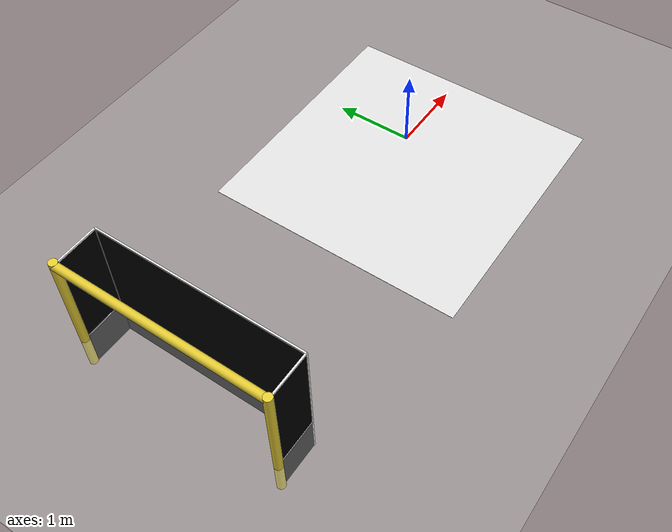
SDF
<sdf version="1.6">
 <world name="default">
  <model name="ground_plane">
   <static>1</static>
   <link name="link">
    <collision name="collision">
     <geometry><plane><normal>0 0 1</normal><size>100 100</size></plane></geometry>
     <surface><friction><ode><mu>100</mu><mu2>50</mu2></ode></friction></surface>
    </collision>
    <visual name="visual">
     <cast_shadows>0</cast_shadows>
     <geometry><plane><normal>0 0 1</normal><size>100 100</size></plane></geometry>
     <material>
      <script><uri>file://media/materials/scripts/gazebo.material</uri><name>Gazebo/Grey</name></script>
     </material>
    </visual>
   </link>
  </model>
  <model name="floor">
   <link name="link_0">
    <inertial>
     <mass>1</mass>
     <inertia><ixx>1</ixx><ixy>0</ixy><ixz>0</ixz><iyy>1</iyy><iyz>0</iyz><izz>1</izz></inertia>
    </inertial>
    <gravity>0</gravity>
    <visual name="visual">
     <pose>0 0 -0.49 0 -0 0</pose>
     <geometry><plane><normal>0 0 1</normal><size>3.5 3.5</size></plane></geometry>
     <material>
      <lighting>1</lighting>
      <script><uri>file://media/materials/scripts/gazebo.material</uri><name>Gazebo/White</name></script>
      <ambient>1 1 1 1</ambient>
      <diffuse>1 1 1 1</diffuse>
      <specular>1 1 1 1</specular>
      <emissive>0 0 0 1</emissive>
      <shader type="vertex"><normal_map>__default__</normal_map></shader>
     </material>
    </visual>
    <collision name="collision">
     <pose>0 0 -0.49 0 -0 0</pose>
     <geometry><plane><normal>0 0 1</normal><size>100 100</size></plane></geometry>
     <surface>
      <friction>
       <ode><mu>100</mu><mu2>50</mu2><fdir1>0 0 0</fdir1><slip1>0</slip1><slip2>0</slip2></ode>
       <torsional>
        <coefficient>1</coefficient>
        <patch_radius>0</patch_radius>
        <surface_radius>0</surface_radius>
        <use_patch_radius>1</use_patch_radius>
        <ode><slip>0</slip></ode>
       </torsional>
      </friction>
      <bounce><restitution_coefficient>0</restitution_coefficient><threshold>100000</threshold></bounce>
      <contact>
       <collide_without_contact>0</collide_without_contact>
       <collide_without_contact_bitmask>1</collide_without_contact_bitmask>
       <collide_bitmask>1</collide_bitmask>
       <ode>
        <soft_cfm>0</soft_cfm>
        <soft_erp>0.2</soft_erp>
        <kp>1e+13</kp>
        <kd>1</kd>
        <max_vel>0.01</max_vel>
        <min_depth>0</min_depth>
       </ode>
       <bullet>
        <split_impulse>1</split_impulse>
        <split_impulse_penetration_threshold>-0.01</split_impulse_penetration_threshold>
        <soft_cfm>0</soft_cfm>
        <soft_erp>0.2</soft_erp>
        <kp>1e+13</kp>
        <kd>1</kd>
       </bullet>
      </contact>
     </surface>
    </collision>
   </link>
   <static>1</static>
  </model>
  <model name="robocup_3d_goal_2">
   <link name="left_post">
    <pose>0 1.3 0.45 0 -0 0</pose>
    <inertial>
     <mass>1</mass>
     <inertia><ixx>1</ixx><ixy>0</ixy><ixz>0</ixz><iyy>1</iyy><iyz>0</iyz><izz>1</izz></inertia>
    </inertial>
    <visual name="visual">
     <geometry><cylinder><radius>0.05</radius><length>1.8</length></cylinder></geometry>
     <material>
      <script><uri>file://media/materials/scripts/gazebo.material</uri><name>Gazebo/ZincYellow</name></script>
      <ambient>1 1 1 1</ambient>
      <diffuse>1 1 1 1</diffuse>
      <specular>1 1 1 1</specular>
      <emissive>0 0 0 1</emissive>
      <shader type="vertex"><normal_map>__default__</normal_map></shader>
     </material>
    </visual>
    <collision name="collision">
     <geometry><cylinder><radius>0.05</radius><length>1.8</length></cylinder></geometry>
     <surface>
      <friction>
       <ode><mu>1</mu><mu2>1</mu2><fdir1>0 0 0</fdir1><slip1>0</slip1><slip2>0</slip2></ode>
       <torsional>
        <coefficient>1</coefficient>
        <patch_radius>0</patch_radius>
        <surface_radius>0</surface_radius>
        <use_patch_radius>1</use_patch_radius>
        <ode><slip>0</slip></ode>
       </torsional>
      </friction>
      <bounce><restitution_coefficient>0</restitution_coefficient><threshold>1e+06</threshold></bounce>
      <contact>
       <collide_without_contact>0</collide_without_contact>
       <collide_without_contact_bitmask>1</collide_without_contact_bitmask>
       <collide_bitmask>1</collide_bitmask>
       <ode>
        <soft_cfm>0</soft_cfm>
        <soft_erp>0.2</soft_erp>
        <kp>1e+13</kp>
        <kd>1</kd>
        <max_vel>0.01</max_vel>
        <min_depth>0</min_depth>
       </ode>
       <bullet>
        <split_impulse>1</split_impulse>
        <split_impulse_penetration_threshold>-0.01</split_impulse_penetration_threshold>
        <soft_cfm>0</soft_cfm>
        <soft_erp>0.2</soft_erp>
        <kp>1e+13</kp>
        <kd>1</kd>
       </bullet>
      </contact>
     </surface>
    </collision>
   </link>
   <link name="center_net">
    <pose>0.56 0 0.4 0 -0 0</pose>
    <inertial>
     <mass>1</mass>
     <inertia><ixx>1</ixx><ixy>0</ixy><ixz>0</ixz><iyy>1</iyy><iyz>0</iyz><izz>1</izz></inertia>
    </inertial>
    <visual name="visual">
     <geometry><box><size>0.01 2.6 1.8</size></box></geometry>
     <material>
      <script>
       <uri>model://robocup09_spl_field/materials/scripts/</uri>
       <uri>model://robocup09_spl_field/materials/textures/</uri>
       <name>RoboCup/Net</name>
      </script>
      <ambient>0 0 0 1</ambient>
      <diffuse>0 0 0 1</diffuse>
      <specular>0 0 0 1</specular>
      <emissive>0 0 0 1</emissive>
      <shader type="vertex"><normal_map>__default__</normal_map></shader>
     </material>
    </visual>
    <collision name="collision">
     <geometry><box><size>0.01 2.6 1.8</size></box></geometry>
     <surface>
      <friction>
       <ode><mu>1</mu><mu2>1</mu2><fdir1>0 0 0</fdir1><slip1>0</slip1><slip2>0</slip2></ode>
       <torsional>
        <coefficient>1</coefficient>
        <patch_radius>0</patch_radius>
        <surface_radius>0</surface_radius>
        <use_patch_radius>1</use_patch_radius>
        <ode><slip>0</slip></ode>
       </torsional>
      </friction>
      <bounce><restitution_coefficient>0</restitution_coefficient><threshold>1e+06</threshold></bounce>
      <contact>
       <collide_without_contact>0</collide_without_contact>
       <collide_without_contact_bitmask>1</collide_without_contact_bitmask>
       <collide_bitmask>1</collide_bitmask>
       <ode>
        <soft_cfm>0</soft_cfm>
        <soft_erp>0.2</soft_erp>
        <kp>1e+13</kp>
        <kd>1</kd>
        <max_vel>0.01</max_vel>
        <min_depth>0</min_depth>
       </ode>
       <bullet>
        <split_impulse>1</split_impulse>
        <split_impulse_penetration_threshold>-0.01</split_impulse_penetration_threshold>
        <soft_cfm>0</soft_cfm>
        <soft_erp>0.2</soft_erp>
        <kp>1e+13</kp>
        <kd>1</kd>
       </bullet>
      </contact>
     </surface>
    </collision>
   </link>
   <link name="center_support_horiz_lower">
    <pose>0.56 0 0.01 -3.14159 1.57079 -3.14159</pose>
    <inertial>
     <mass>1</mass>
     <inertia><ixx>1</ixx><ixy>0</ixy><ixz>0</ixz><iyy>1</iyy><iyz>0</iyz><izz>1</izz></inertia>
    </inertial>
    <visual name="visual">
     <geometry><box><size>0.02 2.6 0.02</size></box></geometry>
     <material>
      <script><uri>file://media/materials/scripts/gazebo.material</uri><name>Gazebo/White</name></script>
      <ambient>1 1 1 1</ambient>
      <diffuse>1 1 1 1</diffuse>
      <specular>0 0 0 1</specular>
      <emissive>0 0 0 1</emissive>
      <shader type="vertex"><normal_map>__default__</normal_map></shader>
     </material>
    </visual>
    <collision name="collision">
     <geometry><box><size>0.02 2.08 0.02</size></box></geometry>
     <surface>
      <friction>
       <ode><mu>1</mu><mu2>1</mu2><fdir1>0 0 0</fdir1><slip1>0</slip1><slip2>0</slip2></ode>
       <torsional>
        <coefficient>1</coefficient>
        <patch_radius>0</patch_radius>
        <surface_radius>0</surface_radius>
        <use_patch_radius>1</use_patch_radius>
        <ode><slip>0</slip></ode>
       </torsional>
      </friction>
      <bounce><restitution_coefficient>0</restitution_coefficient><threshold>1e+06</threshold></bounce>
      <contact>
       <collide_without_contact>0</collide_without_contact>
       <collide_without_contact_bitmask>1</collide_without_contact_bitmask>
       <collide_bitmask>1</collide_bitmask>
       <ode>
        <soft_cfm>0</soft_cfm>
        <soft_erp>0.2</soft_erp>
        <kp>1e+13</kp>
        <kd>1</kd>
        <max_vel>0.01</max_vel>
        <min_depth>0</min_depth>
       </ode>
       <bullet>
        <split_impulse>1</split_impulse>
        <split_impulse_penetration_threshold>-0.01</split_impulse_penetration_threshold>
        <soft_cfm>0</soft_cfm>
        <soft_erp>0.2</soft_erp>
        <kp>1e+13</kp>
        <kd>1</kd>
       </bullet>
      </contact>
     </surface>
    </collision>
   </link>
   <link name="center_support_horiz_upper">
    <pose>0.56 0 1.3 -3.14159 1.57079 -3.14159</pose>
    <inertial>
     <mass>1</mass>
     <inertia><ixx>1</ixx><ixy>0</ixy><ixz>0</ixz><iyy>1</iyy><iyz>0</iyz><izz>1</izz></inertia>
    </inertial>
    <visual name="visual">
     <geometry><box><size>0.02 2.6 0.02</size></box></geometry>
     <material>
      <script><uri>file://media/materials/scripts/gazebo.material</uri><name>Gazebo/White</name></script>
      <ambient>1 1 1 1</ambient>
      <diffuse>1 1 1 1</diffuse>
      <specular>0 0 0 1</specular>
      <emissive>0 0 0 1</emissive>
      <shader type="vertex"><normal_map>__default__</normal_map></shader>
     </material>
    </visual>
    <collision name="collision">
     <geometry><box><size>0.02 2.08 0.02</size></box></geometry>
     <surface>
      <friction>
       <ode><mu>1</mu><mu2>1</mu2><fdir1>0 0 0</fdir1><slip1>0</slip1><slip2>0</slip2></ode>
       <torsional>
        <coefficient>1</coefficient>
        <patch_radius>0</patch_radius>
        <surface_radius>0</surface_radius>
        <use_patch_radius>1</use_patch_radius>
        <ode><slip>0</slip></ode>
       </torsional>
      </friction>
      <bounce><restitution_coefficient>0</restitution_coefficient><threshold>1e+06</threshold></bounce>
      <contact>
       <collide_without_contact>0</collide_without_contact>
       <collide_without_contact_bitmask>1</collide_without_contact_bitmask>
       <collide_bitmask>1</collide_bitmask>
       <ode>
        <soft_cfm>0</soft_cfm>
        <soft_erp>0.2</soft_erp>
        <kp>1e+13</kp>
        <kd>1</kd>
        <max_vel>0.01</max_vel>
        <min_depth>0</min_depth>
       </ode>
       <bullet>
        <split_impulse>1</split_impulse>
        <split_impulse_penetration_threshold>-0.01</split_impulse_penetration_threshold>
        <soft_cfm>0</soft_cfm>
        <soft_erp>0.2</soft_erp>
        <kp>1e+13</kp>
        <kd>1</kd>
       </bullet>
      </contact>
     </surface>
    </collision>
   </link>
   <link name="crossbar">
    <pose>0 0 1.3 1.56994 1.57 -4.3e-05</pose>
    <inertial>
     <mass>1</mass>
     <inertia><ixx>1</ixx><ixy>0</ixy><ixz>0</ixz><iyy>1</iyy><iyz>0</iyz><izz>1</izz></inertia>
    </inertial>
    <visual name="visual">
     <geometry><cylinder><radius>0.05</radius><length>2.6</length></cylinder></geometry>
     <material>
      <script><uri>file://media/materials/scripts/gazebo.material</uri><name>Gazebo/ZincYellow</name></script>
      <ambient>1 1 1 1</ambient>
      <diffuse>1 1 1 1</diffuse>
      <specular>1 1 1 1</specular>
      <emissive>0 0 0 1</emissive>
      <shader type="vertex"><normal_map>__default__</normal_map></shader>
     </material>
    </visual>
    <collision name="collision">
     <geometry><cylinder><radius>0.05</radius><length>2.6</length></cylinder></geometry>
     <surface>
      <friction>
       <ode><mu>1</mu><mu2>1</mu2><fdir1>0 0 0</fdir1><slip1>0</slip1><slip2>0</slip2></ode>
       <torsional>
        <coefficient>1</coefficient>
        <patch_radius>0</patch_radius>
        <surface_radius>0</surface_radius>
        <use_patch_radius>1</use_patch_radius>
        <ode><slip>0</slip></ode>
       </torsional>
      </friction>
      <bounce><restitution_coefficient>0</restitution_coefficient><threshold>1e+06</threshold></bounce>
      <contact>
       <collide_without_contact>0</collide_without_contact>
       <collide_without_contact_bitmask>1</collide_without_contact_bitmask>
       <collide_bitmask>1</collide_bitmask>
       <ode>
        <soft_cfm>0</soft_cfm>
        <soft_erp>0.2</soft_erp>
        <kp>1e+13</kp>
        <kd>1</kd>
        <max_vel>0.01</max_vel>
        <min_depth>0</min_depth>
       </ode>
       <bullet>
        <split_impulse>1</split_impulse>
        <split_impulse_penetration_threshold>-0.01</split_impulse_penetration_threshold>
        <soft_cfm>0</soft_cfm>
        <soft_erp>0.2</soft_erp>
        <kp>1e+13</kp>
        <kd>1</kd>
       </bullet>
      </contact>
     </surface>
    </collision>
   </link>
   <link name="left_net">
    <pose>0.3 1.3 0.4 0 -0 0</pose>
    <inertial>
     <mass>1</mass>
     <inertia><ixx>1</ixx><ixy>0</ixy><ixz>0</ixz><iyy>1</iyy><iyz>0</iyz><izz>1</izz></inertia>
    </inertial>
    <visual name="visual">
     <geometry><box><size>0.5 0.01 1.8</size></box></geometry>
     <material>
      <script>
       <uri>model://robocup09_spl_field/materials/scripts/</uri>
       <uri>model://robocup09_spl_field/materials/textures/</uri>
       <name>RoboCup/Net</name>
      </script>
      <ambient>0 0 0 1</ambient>
      <diffuse>0 0 0 1</diffuse>
      <specular>0 0 0 1</specular>
      <emissive>0 0 0 1</emissive>
      <shader type="vertex"><normal_map>__default__</normal_map></shader>
     </material>
    </visual>
    <collision name="collision">
     <geometry><box><size>0.5 0.01 1.8</size></box></geometry>
     <surface>
      <friction>
       <ode><mu>1</mu><mu2>1</mu2><fdir1>0 0 0</fdir1><slip1>0</slip1><slip2>0</slip2></ode>
       <torsional>
        <coefficient>1</coefficient>
        <patch_radius>0</patch_radius>
        <surface_radius>0</surface_radius>
        <use_patch_radius>1</use_patch_radius>
        <ode><slip>0</slip></ode>
       </torsional>
      </friction>
      <bounce><restitution_coefficient>0</restitution_coefficient><threshold>1e+06</threshold></bounce>
      <contact>
       <collide_without_contact>0</collide_without_contact>
       <collide_without_contact_bitmask>1</collide_without_contact_bitmask>
       <collide_bitmask>1</collide_bitmask>
       <ode>
        <soft_cfm>0</soft_cfm>
        <soft_erp>0.2</soft_erp>
        <kp>1e+13</kp>
        <kd>1</kd>
        <max_vel>0.01</max_vel>
        <min_depth>0</min_depth>
       </ode>
       <bullet>
        <split_impulse>1</split_impulse>
        <split_impulse_penetration_threshold>-0.01</split_impulse_penetration_threshold>
        <soft_cfm>0</soft_cfm>
        <soft_erp>0.2</soft_erp>
        <kp>1e+13</kp>
        <kd>1</kd>
       </bullet>
      </contact>
     </surface>
    </collision>
   </link>
   <link name="left_support_horiz_lower">
    <pose>0.3 1.3 0 0 -0 0</pose>
    <inertial>
     <mass>1</mass>
     <inertia><ixx>1</ixx><ixy>0</ixy><ixz>0</ixz><iyy>1</iyy><iyz>0</iyz><izz>1</izz></inertia>
    </inertial>
    <visual name="visual">
     <geometry><box><size>0.5 0.02 0.02</size></box></geometry>
     <material>
      <script><uri>file://media/materials/scripts/gazebo.material</uri><name>Gazebo/White</name></script>
      <ambient>1 1 1 1</ambient>
      <diffuse>1 1 1 1</diffuse>
      <specular>0 0 0 1</specular>
      <emissive>0 0 0 1</emissive>
      <shader type="vertex"><normal_map>__default__</normal_map></shader>
     </material>
    </visual>
    <collision name="collision">
     <geometry><box><size>0.5 0.02 0.02</size></box></geometry>
     <surface>
      <friction>
       <ode><mu>1</mu><mu2>1</mu2><fdir1>0 0 0</fdir1><slip1>0</slip1><slip2>0</slip2></ode>
       <torsional>
        <coefficient>1</coefficient>
        <patch_radius>0</patch_radius>
        <surface_radius>0</surface_radius>
        <use_patch_radius>1</use_patch_radius>
        <ode><slip>0</slip></ode>
       </torsional>
      </friction>
      <bounce><restitution_coefficient>0</restitution_coefficient><threshold>1e+06</threshold></bounce>
      <contact>
       <collide_without_contact>0</collide_without_contact>
       <collide_without_contact_bitmask>1</collide_without_contact_bitmask>
       <collide_bitmask>1</collide_bitmask>
       <ode>
        <soft_cfm>0</soft_cfm>
        <soft_erp>0.2</soft_erp>
        <kp>1e+13</kp>
        <kd>1</kd>
        <max_vel>0.01</max_vel>
        <min_depth>0</min_depth>
       </ode>
       <bullet>
        <split_impulse>1</split_impulse>
        <split_impulse_penetration_threshold>-0.01</split_impulse_penetration_threshold>
        <soft_cfm>0</soft_cfm>
        <soft_erp>0.2</soft_erp>
        <kp>1e+13</kp>
        <kd>1</kd>
       </bullet>
      </contact>
     </surface>
    </collision>
   </link>
   <link name="left_support_horiz_upper">
    <pose>0.3 1.3 1.3 0 -0 0</pose>
    <inertial>
     <mass>1</mass>
     <inertia><ixx>1</ixx><ixy>0</ixy><ixz>0</ixz><iyy>1</iyy><iyz>0</iyz><izz>1</izz></inertia>
    </inertial>
    <visual name="visual">
     <geometry><box><size>0.5 0.02 0.02</size></box></geometry>
     <material>
      <script><uri>file://media/materials/scripts/gazebo.material</uri><name>Gazebo/White</name></script>
      <ambient>1 1 1 1</ambient>
      <diffuse>1 1 1 1</diffuse>
      <specular>0 0 0 1</specular>
      <emissive>0 0 0 1</emissive>
      <shader type="vertex"><normal_map>__default__</normal_map></shader>
     </material>
    </visual>
    <collision name="collision">
     <geometry><box><size>0.5 0.02 0.02</size></box></geometry>
     <surface>
      <friction>
       <ode><mu>1</mu><mu2>1</mu2><fdir1>0 0 0</fdir1><slip1>0</slip1><slip2>0</slip2></ode>
       <torsional>
        <coefficient>1</coefficient>
        <patch_radius>0</patch_radius>
        <surface_radius>0</surface_radius>
        <use_patch_radius>1</use_patch_radius>
        <ode><slip>0</slip></ode>
       </torsional>
      </friction>
      <bounce><restitution_coefficient>0</restitution_coefficient><threshold>1e+06</threshold></bounce>
      <contact>
       <collide_without_contact>0</collide_without_contact>
       <collide_without_contact_bitmask>1</collide_without_contact_bitmask>
       <collide_bitmask>1</collide_bitmask>
       <ode>
        <soft_cfm>0</soft_cfm>
        <soft_erp>0.2</soft_erp>
        <kp>1e+13</kp>
        <kd>1</kd>
        <max_vel>0.01</max_vel>
        <min_depth>0</min_depth>
       </ode>
       <bullet>
        <split_impulse>1</split_impulse>
        <split_impulse_penetration_threshold>-0.01</split_impulse_penetration_threshold>
        <soft_cfm>0</soft_cfm>
        <soft_erp>0.2</soft_erp>
        <kp>1e+13</kp>
        <kd>1</kd>
       </bullet>
      </contact>
     </surface>
    </collision>
   </link>
   <link name="left_support_vertical">
    <pose>0.56 1.3 0.4 -3.14159 1.57079 -3.14159</pose>
    <inertial>
     <mass>1</mass>
     <inertia><ixx>1</ixx><ixy>0</ixy><ixz>0</ixz><iyy>1</iyy><iyz>0</iyz><izz>1</izz></inertia>
    </inertial>
    <visual name="visual">
     <geometry><box><size>1.8 0.02 0.02</size></box></geometry>
     <material>
      <script><uri>file://media/materials/scripts/gazebo.material</uri><name>Gazebo/White</name></script>
      <ambient>1 1 1 1</ambient>
      <diffuse>1 1 1 1</diffuse>
      <specular>0 0 0 1</specular>
      <emissive>0 0 0 1</emissive>
      <shader type="vertex"><normal_map>__default__</normal_map></shader>
     </material>
    </visual>
    <collision name="collision">
     <geometry><box><size>0.8 0.02 0.02</size></box></geometry>
     <surface>
      <friction>
       <ode><mu>1</mu><mu2>1</mu2><fdir1>0 0 0</fdir1><slip1>0</slip1><slip2>0</slip2></ode>
       <torsional>
        <coefficient>1</coefficient>
        <patch_radius>0</patch_radius>
        <surface_radius>0</surface_radius>
        <use_patch_radius>1</use_patch_radius>
        <ode><slip>0</slip></ode>
       </torsional>
      </friction>
      <bounce><restitution_coefficient>0</restitution_coefficient><threshold>1e+06</threshold></bounce>
      <contact>
       <collide_without_contact>0</collide_without_contact>
       <collide_without_contact_bitmask>1</collide_without_contact_bitmask>
       <collide_bitmask>1</collide_bitmask>
       <ode>
        <soft_cfm>0</soft_cfm>
        <soft_erp>0.2</soft_erp>
        <kp>1e+13</kp>
        <kd>1</kd>
        <max_vel>0.01</max_vel>
        <min_depth>0</min_depth>
       </ode>
       <bullet>
        <split_impulse>1</split_impulse>
        <split_impulse_penetration_threshold>-0.01</split_impulse_penetration_threshold>
        <soft_cfm>0</soft_cfm>
        <soft_erp>0.2</soft_erp>
        <kp>1e+13</kp>
        <kd>1</kd>
       </bullet>
      </contact>
     </surface>
    </collision>
   </link>
   <link name="right_net">
    <pose>0.3 -1.3 0.4 0 -0 0</pose>
    <inertial>
     <mass>1</mass>
     <inertia><ixx>1</ixx><ixy>0</ixy><ixz>0</ixz><iyy>1</iyy><iyz>0</iyz><izz>1</izz></inertia>
    </inertial>
    <visual name="visual">
     <geometry><box><size>0.5 0.01 1.8</size></box></geometry>
     <material>
      <script>
       <uri>model://robocup09_spl_field/materials/scripts/</uri>
       <uri>model://robocup09_spl_field/materials/textures/</uri>
       <name>RoboCup/Net</name>
      </script>
      <ambient>0 0 0 1</ambient>
      <diffuse>0 0 0 1</diffuse>
      <specular>0 0 0 1</specular>
      <emissive>0 0 0 1</emissive>
      <shader type="vertex"><normal_map>__default__</normal_map></shader>
     </material>
    </visual>
    <collision name="collision">
     <geometry><box><size>0.5 0.01 1.8</size></box></geometry>
     <surface>
      <friction>
       <ode><mu>1</mu><mu2>1</mu2><fdir1>0 0 0</fdir1><slip1>0</slip1><slip2>0</slip2></ode>
       <torsional>
        <coefficient>1</coefficient>
        <patch_radius>0</patch_radius>
        <surface_radius>0</surface_radius>
        <use_patch_radius>1</use_patch_radius>
        <ode><slip>0</slip></ode>
       </torsional>
      </friction>
      <bounce><restitution_coefficient>0</restitution_coefficient><threshold>1e+06</threshold></bounce>
      <contact>
       <collide_without_contact>0</collide_without_contact>
       <collide_without_contact_bitmask>1</collide_without_contact_bitmask>
       <collide_bitmask>1</collide_bitmask>
       <ode>
        <soft_cfm>0</soft_cfm>
        <soft_erp>0.2</soft_erp>
        <kp>1e+13</kp>
        <kd>1</kd>
        <max_vel>0.01</max_vel>
        <min_depth>0</min_depth>
       </ode>
       <bullet>
        <split_impulse>1</split_impulse>
        <split_impulse_penetration_threshold>-0.01</split_impulse_penetration_threshold>
        <soft_cfm>0</soft_cfm>
        <soft_erp>0.2</soft_erp>
        <kp>1e+13</kp>
        <kd>1</kd>
       </bullet>
      </contact>
     </surface>
    </collision>
   </link>
   <link name="right_post">
    <pose>0 -1.3 0.45 0 -0 0</pose>
    <inertial>
     <mass>1</mass>
     <inertia><ixx>1</ixx><ixy>0</ixy><ixz>0</ixz><iyy>1</iyy><iyz>0</iyz><izz>1</izz></inertia>
    </inertial>
    <visual name="visual">
     <geometry><cylinder><radius>0.05</radius><length>1.8</length></cylinder></geometry>
     <material>
      <script><uri>file://media/materials/scripts/gazebo.material</uri><name>Gazebo/ZincYellow</name></script>
      <ambient>1 1 1 1</ambient>
      <diffuse>1 1 1 1</diffuse>
      <specular>1 1 1 1</specular>
      <emissive>0 0 0 1</emissive>
      <shader type="vertex"><normal_map>__default__</normal_map></shader>
     </material>
    </visual>
    <collision name="collision">
     <geometry><cylinder><radius>0.05</radius><length>1.8</length></cylinder></geometry>
     <surface>
      <friction>
       <ode><mu>1</mu><mu2>1</mu2><fdir1>0 0 0</fdir1><slip1>0</slip1><slip2>0</slip2></ode>
       <torsional>
        <coefficient>1</coefficient>
        <patch_radius>0</patch_radius>
        <surface_radius>0</surface_radius>
        <use_patch_radius>1</use_patch_radius>
        <ode><slip>0</slip></ode>
       </torsional>
      </friction>
      <bounce><restitution_coefficient>0</restitution_coefficient><threshold>1e+06</threshold></bounce>
      <contact>
       <collide_without_contact>0</collide_without_contact>
       <collide_without_contact_bitmask>1</collide_without_contact_bitmask>
       <collide_bitmask>1</collide_bitmask>
       <ode>
        <soft_cfm>0</soft_cfm>
        <soft_erp>0.2</soft_erp>
        <kp>1e+13</kp>
        <kd>1</kd>
        <max_vel>0.01</max_vel>
        <min_depth>0</min_depth>
       </ode>
       <bullet>
        <split_impulse>1</split_impulse>
        <split_impulse_penetration_threshold>-0.01</split_impulse_penetration_threshold>
        <soft_cfm>0</soft_cfm>
        <soft_erp>0.2</soft_erp>
        <kp>1e+13</kp>
        <kd>1</kd>
       </bullet>
      </contact>
     </surface>
    </collision>
   </link>
   <link name="right_support_horiz_lower">
    <pose>0.3 -1.3 0.01 0 -0 0</pose>
    <inertial>
     <mass>1</mass>
     <inertia><ixx>1</ixx><ixy>0</ixy><ixz>0</ixz><iyy>1</iyy><iyz>0</iyz><izz>1</izz></inertia>
    </inertial>
    <visual name="visual">
     <geometry><box><size>0.5 0.02 0.02</size></box></geometry>
     <material>
      <script><uri>file://media/materials/scripts/gazebo.material</uri><name>Gazebo/White</name></script>
      <ambient>1 1 1 1</ambient>
      <diffuse>1 1 1 1</diffuse>
      <specular>0 0 0 1</specular>
      <emissive>0 0 0 1</emissive>
      <shader type="vertex"><normal_map>__default__</normal_map></shader>
     </material>
    </visual>
    <collision name="collision">
     <geometry><box><size>0.5 0.02 0.02</size></box></geometry>
     <surface>
      <friction>
       <ode><mu>1</mu><mu2>1</mu2><fdir1>0 0 0</fdir1><slip1>0</slip1><slip2>0</slip2></ode>
       <torsional>
        <coefficient>1</coefficient>
        <patch_radius>0</patch_radius>
        <surface_radius>0</surface_radius>
        <use_patch_radius>1</use_patch_radius>
        <ode><slip>0</slip></ode>
       </torsional>
      </friction>
      <bounce><restitution_coefficient>0</restitution_coefficient><threshold>1e+06</threshold></bounce>
      <contact>
       <collide_without_contact>0</collide_without_contact>
       <collide_without_contact_bitmask>1</collide_without_contact_bitmask>
       <collide_bitmask>1</collide_bitmask>
       <ode>
        <soft_cfm>0</soft_cfm>
        <soft_erp>0.2</soft_erp>
        <kp>1e+13</kp>
        <kd>1</kd>
        <max_vel>0.01</max_vel>
        <min_depth>0</min_depth>
       </ode>
       <bullet>
        <split_impulse>1</split_impulse>
        <split_impulse_penetration_threshold>-0.01</split_impulse_penetration_threshold>
        <soft_cfm>0</soft_cfm>
        <soft_erp>0.2</soft_erp>
        <kp>1e+13</kp>
        <kd>1</kd>
       </bullet>
      </contact>
     </surface>
    </collision>
   </link>
   <link name="right_support_horiz_upper">
    <pose>0.3 -1.3 1.3 0 -0 0</pose>
    <inertial>
     <mass>1</mass>
     <inertia><ixx>1</ixx><ixy>0</ixy><ixz>0</ixz><iyy>1</iyy><iyz>0</iyz><izz>1</izz></inertia>
    </inertial>
    <visual name="visual">
     <geometry><box><size>0.5 0.02 0.02</size></box></geometry>
     <material>
      <script><uri>file://media/materials/scripts/gazebo.material</uri><name>Gazebo/White</name></script>
      <ambient>1 1 1 1</ambient>
      <diffuse>1 1 1 1</diffuse>
      <specular>0 0 0 1</specular>
      <emissive>0 0 0 1</emissive>
      <shader type="vertex"><normal_map>__default__</normal_map></shader>
     </material>
    </visual>
    <collision name="collision">
     <geometry><box><size>0.5 0.02 0.02</size></box></geometry>
     <surface>
      <friction>
       <ode><mu>1</mu><mu2>1</mu2><fdir1>0 0 0</fdir1><slip1>0</slip1><slip2>0</slip2></ode>
       <torsional>
        <coefficient>1</coefficient>
        <patch_radius>0</patch_radius>
        <surface_radius>0</surface_radius>
        <use_patch_radius>1</use_patch_radius>
        <ode><slip>0</slip></ode>
       </torsional>
      </friction>
      <bounce><restitution_coefficient>0</restitution_coefficient><threshold>1e+06</threshold></bounce>
      <contact>
       <collide_without_contact>0</collide_without_contact>
       <collide_without_contact_bitmask>1</collide_without_contact_bitmask>
       <collide_bitmask>1</collide_bitmask>
       <ode>
        <soft_cfm>0</soft_cfm>
        <soft_erp>0.2</soft_erp>
        <kp>1e+13</kp>
        <kd>1</kd>
        <max_vel>0.01</max_vel>
        <min_depth>0</min_depth>
       </ode>
       <bullet>
        <split_impulse>1</split_impulse>
        <split_impulse_penetration_threshold>-0.01</split_impulse_penetration_threshold>
        <soft_cfm>0</soft_cfm>
        <soft_erp>0.2</soft_erp>
        <kp>1e+13</kp>
        <kd>1</kd>
       </bullet>
      </contact>
     </surface>
    </collision>
   </link>
   <link name="right_support_vertical">
    <pose>0.56 -1.3 0.4 -3.14159 1.57079 -3.14159</pose>
    <inertial>
     <mass>1</mass>
     <inertia><ixx>1</ixx><ixy>0</ixy><ixz>0</ixz><iyy>1</iyy><iyz>0</iyz><izz>1</izz></inertia>
    </inertial>
    <visual name="visual">
     <geometry><box><size>1.8 0.02 0.02</size></box></geometry>
     <material>
      <script><uri>file://media/materials/scripts/gazebo.material</uri><name>Gazebo/White</name></script>
      <ambient>1 1 1 1</ambient>
      <diffuse>1 1 1 1</diffuse>
      <specular>0 0 0 1</specular>
      <emissive>0 0 0 1</emissive>
      <shader type="vertex"><normal_map>__default__</normal_map></shader>
     </material>
    </visual>
    <collision name="collision">
     <geometry><box><size>0.8 0.02 0.02</size></box></geometry>
     <surface>
      <friction>
       <ode><mu>1</mu><mu2>1</mu2><fdir1>0 0 0</fdir1><slip1>0</slip1><slip2>0</slip2></ode>
       <torsional>
        <coefficient>1</coefficient>
        <patch_radius>0</patch_radius>
        <surface_radius>0</surface_radius>
        <use_patch_radius>1</use_patch_radius>
        <ode><slip>0</slip></ode>
       </torsional>
      </friction>
      <bounce><restitution_coefficient>0</restitution_coefficient><threshold>1e+06</threshold></bounce>
      <contact>
       <collide_without_contact>0</collide_without_contact>
       <collide_without_contact_bitmask>1</collide_without_contact_bitmask>
       <collide_bitmask>1</collide_bitmask>
       <ode>
        <soft_cfm>0</soft_cfm>
        <soft_erp>0.2</soft_erp>
        <kp>1e+13</kp>
        <kd>1</kd>
        <max_vel>0.01</max_vel>
        <min_depth>0</min_depth>
       </ode>
       <bullet>
        <split_impulse>1</split_impulse>
        <split_impulse_penetration_threshold>-0.01</split_impulse_penetration_threshold>
        <soft_cfm>0</soft_cfm>
        <soft_erp>0.2</soft_erp>
        <kp>1e+13</kp>
        <kd>1</kd>
       </bullet>
      </contact>
     </surface>
    </collision>
   </link>
   <static>1</static>
   <pose>-4.48147 -0.041914 0 0 -0 0</pose>
  </model>
 </world>
</sdf>
